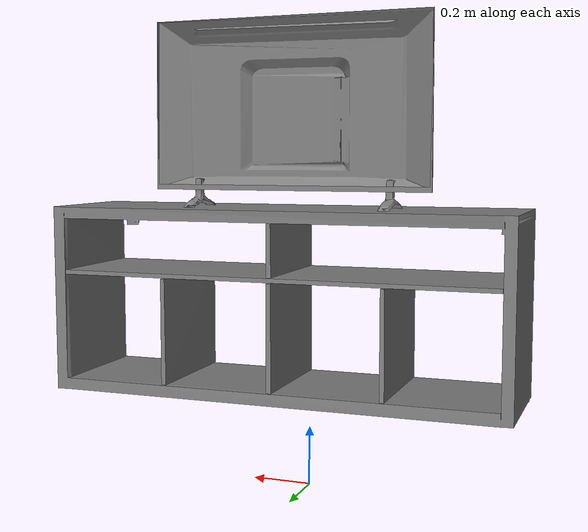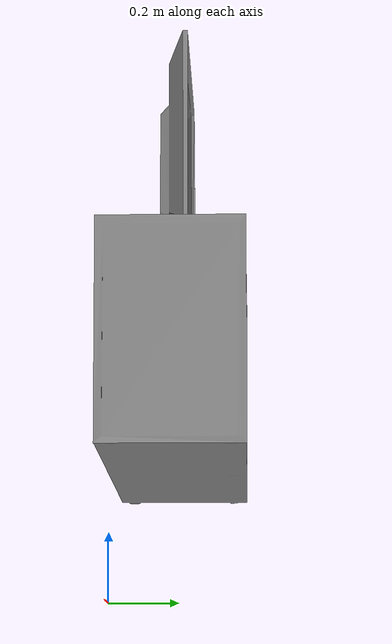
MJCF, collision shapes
<mujoco model="tv">
  <default>
    <default class="visual">
      <geom group="2" type="mesh" contype="0" conaffinity="0"/>
    </default>
    <default class="collision">
      <geom group="3" type="mesh"/>
    </default>
  </default>
  <asset>
    <material name="GLASS.004" specular="0.5" shininess="0.5" rgba="0.014670 0.014670 0.014670 1.000000"/>
    <material name="Material.041" specular="0.5" shininess="0.5" rgba="0.090838 0.090838 0.090838 1.000000"/>
    <material name="Material.042" specular="0.5" shininess="0.5" rgba="0.012217 0.012217 0.012217 1.000000"/>
    <material name="Material.043" specular="0.5" shininess="0.5" rgba="0.800000 0.800000 0.800000 1.000000"/>
    <material name="Material.044" specular="0.5" shininess="0.5" rgba="0.195988 0.195988 0.195988 1.000000"/>
    <material name="Material.045" specular="0.5" shininess="0.5" rgba="0.800000 0.800000 0.800000 1.000000"/>
    <material name="Material.046" specular="0.5" shininess="0.5" rgba="0.800000 0.043768 0.017155 1.000000"/>
    <material name="Material.047" specular="0.5" shininess="0.5" rgba="0.800000 0.800000 0.800000 1.000000"/>
    <material name="Material.048" specular="0.5" shininess="0.5" rgba="0.009178 0.803020 0.000000 1.000000"/>
    <material name="Material.049" specular="0.5" shininess="0.5" rgba="0.800000 0.800000 0.800000 1.000000"/>
    <material name="Material.050" specular="0.5" shininess="0.5" rgba="0.020379 0.020379 0.020379 1.000000"/>
    <material name="STAND.004" specular="0.5" shininess="0.5" rgba="0.800000 0.800000 0.800000 1.000000"/>
    <texture type="2d" name="Basecolor_0" file="Basecolor_0.png"/>
    <material name="SimplygonCastMaterial.005" texture="Basecolor_0" specular="0.5" shininess="0.5"/>
    <material name="YELLOW_RUB.004" specular="0.5" shininess="0.5" rgba="0.800000 0.694251 0.005074 1.000000"/>
    <material name="metal.004" specular="0.5" shininess="0.5" rgba="0.800000 0.800000 0.800000 1.000000"/>
    <material name="white__rub.004" specular="0.5" shininess="0.5" rgba="0.569931 0.800408 0.044037 1.000000"/>
    <mesh file="tv_0.obj"/>
    <mesh file="tv_1.obj"/>
    <mesh file="tv_2.obj"/>
    <mesh file="tv_3.obj"/>
    <mesh file="tv_4.obj"/>
    <mesh file="tv_5.obj"/>
    <mesh file="tv_6.obj"/>
    <mesh file="tv_7.obj"/>
    <mesh file="tv_8.obj"/>
    <mesh file="tv_9.obj"/>
  </asset>
  <worldbody>
    <body name="tv">
      <geom mesh="tv_0" material="GLASS.004" class="visual"/>
      <geom mesh="tv_1" material="Material.050" class="visual"/>
      <geom mesh="tv_2" material="Material.049" class="visual"/>
      <geom mesh="tv_3" material="Material.047" class="visual"/>
      <geom mesh="tv_4" material="metal.004" class="visual"/>
      <geom mesh="tv_5" material="Material.044" class="visual"/>
      <geom mesh="tv_6" material="Material.042" class="visual"/>
      <geom mesh="tv_7" material="Material.041" class="visual"/>
      <geom mesh="tv_8" material="STAND.004" class="visual"/>
      <geom mesh="tv_9" material="SimplygonCastMaterial.005" class="visual"/>
      <geom mesh="tv_1" class="collision"/>
      <geom mesh="tv_2" class="collision"/>
      <geom mesh="tv_3" class="collision"/>
      <geom mesh="tv_4" class="collision"/>
      <geom mesh="tv_5" class="collision"/>
      <geom mesh="tv_6" class="collision"/>
      <geom mesh="tv_7" class="collision"/>
      <geom mesh="tv_8" class="collision"/>
      <geom mesh="tv_9" class="collision"/>
    </body>
  </worldbody>
</mujoco>
